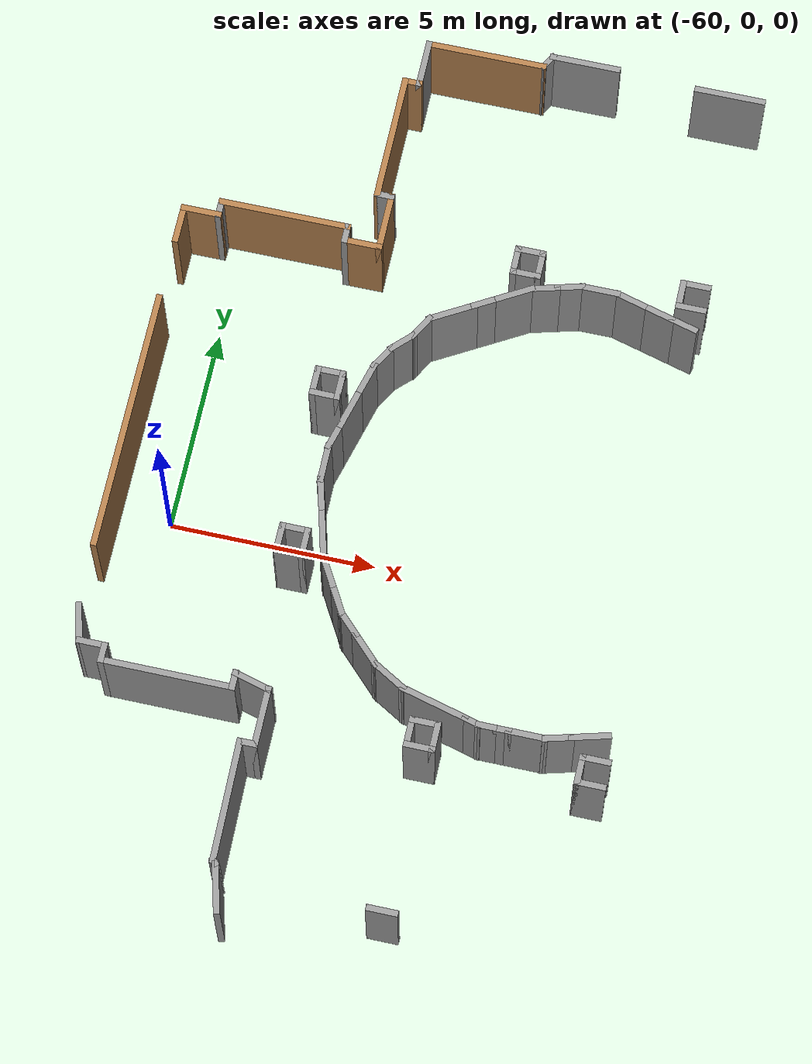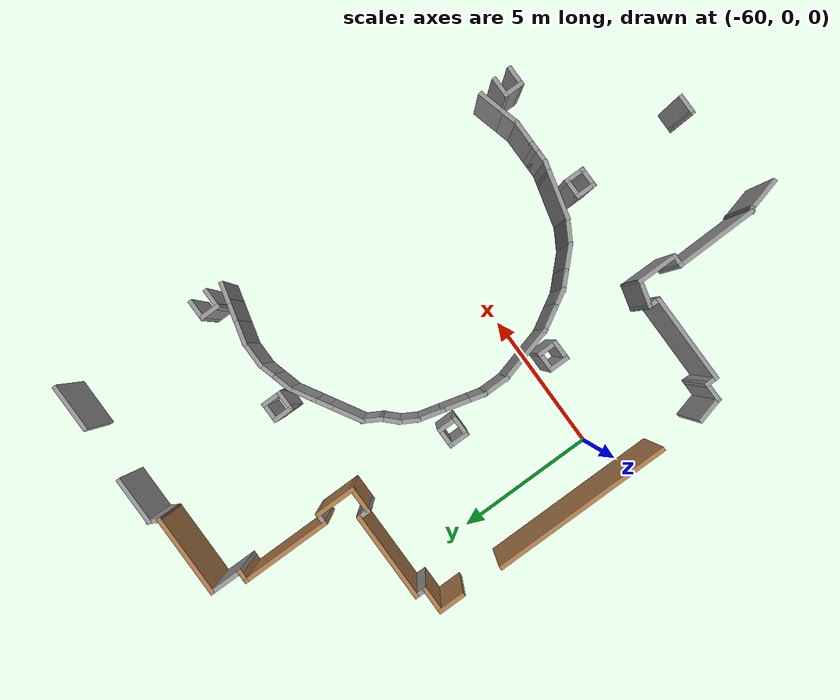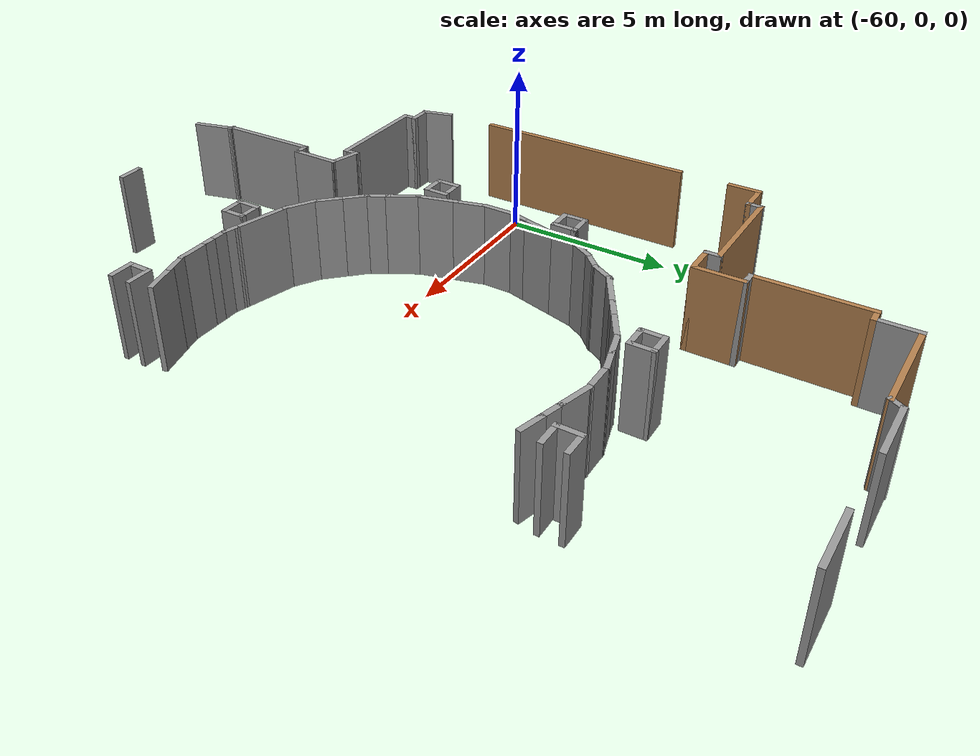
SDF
<sdf version="1.7">
 <model name="TD_1">
  <pose>-32.4963 -12.7971 0 0 -0 0</pose>
  <link name="Wall_257">
   <collision name="Wall_257_Collision">
    <geometry><box><size>3 0.15 2.5</size></box></geometry>
    <pose>0 0 1.25 0 -0 0</pose>
   </collision>
   <visual name="Wall_257_Visual">
    <pose>0 0 1.25 0 -0 0</pose>
    <geometry><box><size>3 0.15 2.5</size></box></geometry>
    <material>
     <script><uri>file://media/materials/scripts/gazebo.material</uri><name>Gazebo/Grey</name></script>
     <ambient>1 1 1 1</ambient>
    </material>
    <meta><layer>0</layer></meta>
   </visual>
   <pose>-24.3442 5.75653 0 0 -0 1.58946</pose>
  </link>
  <link name="Wall_258">
   <collision name="Wall_258_Collision">
    <geometry><box><size>0.5 0.15 2.5</size></box></geometry>
    <pose>0 0 1.25 0 -0 0</pose>
   </collision>
   <visual name="Wall_258_Visual">
    <pose>0 0 1.25 0 -0 0</pose>
    <geometry><box><size>0.5 0.15 2.5</size></box></geometry>
    <material>
     <script><uri>file://media/materials/scripts/gazebo.material</uri><name>Gazebo/Grey</name></script>
     <ambient>1 1 1 1</ambient>
    </material>
    <meta><layer>0</layer></meta>
   </visual>
   <pose>-24.1958 7.18153 0 0 -0 0</pose>
  </link>
  <link name="Wall_259">
   <collision name="Wall_259_Collision">
    <geometry><box><size>1.5 0.15 2.5</size></box></geometry>
    <pose>0 0 1.25 0 -0 0</pose>
   </collision>
   <visual name="Wall_259_Visual">
    <pose>0 0 1.25 0 -0 0</pose>
    <geometry><box><size>1.5 0.15 2.5</size></box></geometry>
    <material>
     <script><uri>file://media/materials/scripts/gazebo.material</uri><name>Gazebo/Grey</name></script>
     <ambient>1 1 1 1</ambient>
    </material>
    <meta><layer>0</layer></meta>
   </visual>
   <pose>-24.0208 7.85653 0 0 -0 1.5708</pose>
  </link>
  <link name="Wall_260">
   <collision name="Wall_260_Collision">
    <geometry><box><size>1 0.15 2.5</size></box></geometry>
    <pose>0 0 1.25 0 -0 0</pose>
   </collision>
   <visual name="Wall_260_Visual">
    <pose>0 0 1.25 0 -0 0</pose>
    <geometry><box><size>1 0.15 2.5</size></box></geometry>
    <material>
     <script><uri>file://media/materials/scripts/gazebo.material</uri><name>Gazebo/Grey</name></script>
     <ambient>1 1 1 1</ambient>
    </material>
    <meta><layer>0</layer></meta>
   </visual>
   <pose>-24.4313 8.64153 0 0 -0 2.87979</pose>
  </link>
  <link name="Wall_261">
   <collision name="Wall_261_Collision">
    <geometry><box><size>0.5 0.15 2.5</size></box></geometry>
    <pose>0 0 1.25 0 -0 0</pose>
   </collision>
   <visual name="Wall_261_Visual">
    <pose>0 0 1.25 0 -0 0</pose>
    <geometry><box><size>0.5 0.15 2.5</size></box></geometry>
    <material>
     <script><uri>file://media/materials/scripts/gazebo.material</uri><name>Gazebo/Grey</name></script>
     <ambient>1 1 1 1</ambient>
    </material>
    <meta><layer>0</layer></meta>
   </visual>
   <pose>-24.8418 8.57653 0 0 -0 -1.5708</pose>
  </link>
  <link name="Wall_262">
   <collision name="Wall_262_Collision">
    <geometry><box><size>3.25 0.15 2.5</size></box></geometry>
    <pose>0 0 1.25 0 -0 0</pose>
   </collision>
   <visual name="Wall_262_Visual">
    <pose>0 0 1.25 0 -0 0</pose>
    <geometry><box><size>3.25 0.15 2.5</size></box></geometry>
    <material>
     <script><uri>file://media/materials/scripts/gazebo.material</uri><name>Gazebo/Grey</name></script>
     <ambient>1 1 1 1</ambient>
    </material>
    <meta><layer>0</layer></meta>
   </visual>
   <pose>-26.3918 8.40153 0 0 -0 3.14159</pose>
  </link>
  <link name="Wall_263">
   <collision name="Wall_263_Collision">
    <geometry><box><size>0.5 0.15 2.5</size></box></geometry>
    <pose>0 0 1.25 0 -0 0</pose>
   </collision>
   <visual name="Wall_263_Visual">
    <pose>0 0 1.25 0 -0 0</pose>
    <geometry><box><size>0.5 0.15 2.5</size></box></geometry>
    <material>
     <script><uri>file://media/materials/scripts/gazebo.material</uri><name>Gazebo/Grey</name></script>
     <ambient>1 1 1 1</ambient>
    </material>
    <meta><layer>0</layer></meta>
   </visual>
   <pose>-27.9418 8.57653 0 0 -0 1.5708</pose>
  </link>
  <link name="Wall_264">
   <collision name="Wall_264_Collision">
    <geometry><box><size>0.75 0.15 2.5</size></box></geometry>
    <pose>0 0 1.25 0 -0 0</pose>
   </collision>
   <visual name="Wall_264_Visual">
    <pose>0 0 1.25 0 -0 0</pose>
    <geometry><box><size>0.75 0.15 2.5</size></box></geometry>
    <material>
     <script><uri>file://media/materials/scripts/gazebo.material</uri><name>Gazebo/Grey</name></script>
     <ambient>1 1 1 1</ambient>
    </material>
    <meta><layer>0</layer></meta>
   </visual>
   <pose>-28.2418 8.75153 0 0 -0 3.14159</pose>
  </link>
  <link name="Wall_265">
   <collision name="Wall_265_Collision">
    <geometry><box><size>1 0.15 2.5</size></box></geometry>
    <pose>0 0 1.25 0 -0 0</pose>
   </collision>
   <visual name="Wall_265_Visual">
    <pose>0 0 1.25 0 -0 0</pose>
    <geometry><box><size>1 0.15 2.5</size></box></geometry>
    <material>
     <script><uri>file://media/materials/scripts/gazebo.material</uri><name>Gazebo/Grey</name></script>
     <ambient>1 1 1 1</ambient>
    </material>
    <meta><layer>0</layer></meta>
   </visual>
   <pose>-28.6518 9.16205 0 0 -0 1.8326</pose>
  </link>
  <link name="Wall_267">
   <collision name="Wall_267_Collision">
    <geometry><box><size>6.5 0.15 2.5</size></box></geometry>
    <pose>0 0 1.25 0 -0 0</pose>
   </collision>
   <visual name="Wall_267_Visual">
    <pose>0 0 1.25 0 -0 0</pose>
    <geometry><box><size>6.5 0.15 2.5</size></box></geometry>
    <material>
     <script><uri>file://media/materials/scripts/gazebo.material</uri><name>Gazebo/Wood</name></script>
     <ambient>1 1 1 1</ambient>
    </material>
    <meta><layer>0</layer></meta>
   </visual>
   <pose>-28.7937 14.3199 0 0 -0 1.5708</pose>
  </link>
  <link name="Wall_269">
   <collision name="Wall_269_Collision">
    <geometry><box><size>1 0.15 2.5</size></box></geometry>
    <pose>0 0 1.25 0 -0 0</pose>
   </collision>
   <visual name="Wall_269_Visual">
    <pose>0 0 1.25 0 -0 0</pose>
    <geometry><box><size>1 0.15 2.5</size></box></geometry>
    <material>
     <script><uri>file://media/materials/scripts/gazebo.material</uri><name>Gazebo/Wood</name></script>
     <ambient>1 1 1 1</ambient>
    </material>
    <meta><layer>0</layer></meta>
   </visual>
   <pose>-28.7707 19.4819 0 0 -0 1.5708</pose>
  </link>
  <link name="Wall_270">
   <collision name="Wall_270_Collision">
    <geometry><box><size>1 0.15 2.5</size></box></geometry>
    <pose>0 0 1.25 0 -0 0</pose>
   </collision>
   <visual name="Wall_270_Visual">
    <pose>0 0 1.25 0 -0 0</pose>
    <geometry><box><size>1 0.15 2.5</size></box></geometry>
    <material>
     <script><uri>file://media/materials/scripts/gazebo.material</uri><name>Gazebo/Wood</name></script>
     <ambient>1 1 1 1</ambient>
    </material>
    <meta><layer>0</layer></meta>
   </visual>
   <pose>-28.3457 19.9069 0 0 -0 0</pose>
  </link>
  <link name="Wall_271">
   <collision name="Wall_271_Collision">
    <geometry><box><size>0.5 0.15 2.5</size></box></geometry>
    <pose>0 0 1.25 0 -0 0</pose>
   </collision>
   <visual name="Wall_271_Visual">
    <pose>0 0 1.25 0 -0 0</pose>
    <geometry><box><size>0.5 0.15 2.5</size></box></geometry>
    <material>
     <script><uri>file://media/materials/scripts/gazebo.material</uri><name>Gazebo/Grey</name></script>
     <ambient>1 1 1 1</ambient>
    </material>
    <meta><layer>0</layer></meta>
   </visual>
   <pose>-27.9207 20.0819 0 0 -0 1.5708</pose>
  </link>
  <link name="Wall_272">
   <collision name="Wall_272_Collision">
    <geometry><box><size>3.25 0.15 2.5</size></box></geometry>
    <pose>0 0 1.25 0 -0 0</pose>
   </collision>
   <visual name="Wall_272_Visual">
    <pose>0 0 1.25 0 -0 0</pose>
    <geometry><box><size>3.25 0.15 2.5</size></box></geometry>
    <material>
     <script><uri>file://media/materials/scripts/gazebo.material</uri><name>Gazebo/Wood</name></script>
     <ambient>1 1 1 1</ambient>
    </material>
    <meta><layer>0</layer></meta>
   </visual>
   <pose>-26.3707 20.2569 0 0 -0 0</pose>
  </link>
  <link name="Wall_273">
   <collision name="Wall_273_Collision">
    <geometry><box><size>0.5 0.15 2.5</size></box></geometry>
    <pose>0 0 1.25 0 -0 0</pose>
   </collision>
   <visual name="Wall_273_Visual">
    <pose>0 0 1.25 0 -0 0</pose>
    <geometry><box><size>0.5 0.15 2.5</size></box></geometry>
    <material>
     <script><uri>file://media/materials/scripts/gazebo.material</uri><name>Gazebo/Grey</name></script>
     <ambient>1 1 1 1</ambient>
    </material>
    <meta><layer>0</layer></meta>
   </visual>
   <pose>-24.8207 20.0819 0 0 -0 -1.5708</pose>
  </link>
  <link name="Wall_274">
   <collision name="Wall_274_Collision">
    <geometry><box><size>1 0.15 2.5</size></box></geometry>
    <pose>0 0 1.25 0 -0 0</pose>
   </collision>
   <visual name="Wall_274_Visual">
    <pose>0 0 1.25 0 -0 0</pose>
    <geometry><box><size>1 0.15 2.5</size></box></geometry>
    <material>
     <script><uri>file://media/materials/scripts/gazebo.material</uri><name>Gazebo/Wood</name></script>
     <ambient>1 1 1 1</ambient>
    </material>
    <meta><layer>0</layer></meta>
   </visual>
   <pose>-24.3957 19.9069 0 0 -0 0</pose>
  </link>
  <link name="Wall_275">
   <collision name="Wall_275_Collision">
    <geometry><box><size>1.5 0.15 2.5</size></box></geometry>
    <pose>0 0 1.25 0 -0 0</pose>
   </collision>
   <visual name="Wall_275_Visual">
    <pose>0 0 1.25 0 -0 0</pose>
    <geometry><box><size>1.5 0.15 2.5</size></box></geometry>
    <material>
     <script><uri>file://media/materials/scripts/gazebo.material</uri><name>Gazebo/Wood</name></script>
     <ambient>1 1 1 1</ambient>
    </material>
    <meta><layer>0</layer></meta>
   </visual>
   <pose>-23.9707 20.5819 0 0 -0 1.5708</pose>
  </link>
  <link name="Wall_276">
   <collision name="Wall_276_Collision">
    <geometry><box><size>0.5 0.15 2.5</size></box></geometry>
    <pose>0 0 1.25 0 -0 0</pose>
   </collision>
   <visual name="Wall_276_Visual">
    <pose>0 0 1.25 0 -0 0</pose>
    <geometry><box><size>0.5 0.15 2.5</size></box></geometry>
    <material>
     <script><uri>file://media/materials/scripts/gazebo.material</uri><name>Gazebo/Grey</name></script>
     <ambient>1 1 1 1</ambient>
    </material>
    <meta><layer>0</layer></meta>
   </visual>
   <pose>-24.1457 21.2569 0 0 -0 3.14159</pose>
  </link>
  <link name="Wall_278">
   <collision name="Wall_278_Collision">
    <geometry><box><size>3.25 0.15 2.5</size></box></geometry>
    <pose>0 0 1.25 0 -0 0</pose>
   </collision>
   <visual name="Wall_278_Visual">
    <pose>0 0 1.25 0 -0 0</pose>
    <geometry><box><size>3.25 0.15 2.5</size></box></geometry>
    <material>
     <script><uri>file://media/materials/scripts/gazebo.material</uri><name>Gazebo/Wood</name></script>
     <ambient>1 1 1 1</ambient>
    </material>
    <meta><layer>0</layer></meta>
   </visual>
   <pose>-24.3207 22.8069 0 0 -0 1.5708</pose>
  </link>
  <link name="Wall_279">
   <collision name="Wall_279_Collision">
    <geometry><box><size>0.5 0.15 2.5</size></box></geometry>
    <pose>0 0 1.25 0 -0 0</pose>
   </collision>
   <visual name="Wall_279_Visual">
    <pose>0 0 1.25 0 -0 0</pose>
    <geometry><box><size>0.5 0.15 2.5</size></box></geometry>
    <material>
     <script><uri>file://media/materials/scripts/gazebo.material</uri><name>Gazebo/Wood</name></script>
     <ambient>1 1 1 1</ambient>
    </material>
    <meta><layer>0</layer></meta>
   </visual>
   <pose>-24.1457 24.3569 0 0 -0 0</pose>
  </link>
  <link name="Wall_280">
   <collision name="Wall_280_Collision">
    <geometry><box><size>1.25 0.15 2.5</size></box></geometry>
    <pose>0 0 1.25 0 -0 0</pose>
   </collision>
   <visual name="Wall_280_Visual">
    <pose>0 0 1.25 0 -0 0</pose>
    <geometry><box><size>1.25 0.15 2.5</size></box></geometry>
    <material>
     <script><uri>file://media/materials/scripts/gazebo.material</uri><name>Gazebo/Grey</name></script>
     <ambient>1 1 1 1</ambient>
    </material>
    <meta><layer>0</layer></meta>
   </visual>
   <pose>-23.9707 24.9069 0 0 -0 1.5708</pose>
  </link>
  <link name="Wall_281">
   <collision name="Wall_281_Collision">
    <geometry><box><size>3 0.15 2.5</size></box></geometry>
    <pose>0 0 1.25 0 -0 0</pose>
   </collision>
   <visual name="Wall_281_Visual">
    <pose>0 0 1.25 0 -0 0</pose>
    <geometry><box><size>3 0.15 2.5</size></box></geometry>
    <material>
     <script><uri>file://media/materials/scripts/gazebo.material</uri><name>Gazebo/Wood</name></script>
     <ambient>1 1 1 1</ambient>
    </material>
    <meta><layer>0</layer></meta>
   </visual>
   <pose>-22.5457 25.4569 0 0 -0 0</pose>
  </link>
  <link name="Wall_282">
   <collision name="Wall_282_Collision">
    <geometry><box><size>0.5 0.15 2.5</size></box></geometry>
    <pose>0 0 1.25 0 -0 0</pose>
   </collision>
   <visual name="Wall_282_Visual">
    <pose>0 0 1.25 0 -0 0</pose>
    <geometry><box><size>0.5 0.15 2.5</size></box></geometry>
    <material>
     <script><uri>file://media/materials/scripts/gazebo.material</uri><name>Gazebo/Grey</name></script>
     <ambient>1 1 1 1</ambient>
    </material>
    <meta><layer>0</layer></meta>
   </visual>
   <pose>-21.0332 25.6085 0 0 -0 1.0472</pose>
  </link>
  <link name="Wall_283">
   <collision name="Wall_283_Collision">
    <geometry><box><size>1.75 0.15 2.5</size></box></geometry>
    <pose>0 0 1.25 0 -0 0</pose>
   </collision>
   <visual name="Wall_283_Visual">
    <pose>0 0 1.25 0 -0 0</pose>
    <geometry><box><size>1.75 0.15 2.5</size></box></geometry>
    <material>
     <script><uri>file://media/materials/scripts/gazebo.material</uri><name>Gazebo/Grey</name></script>
     <ambient>1 1 1 1</ambient>
    </material>
    <meta><layer>0</layer></meta>
   </visual>
   <pose>-20.1457 25.7601 0 0 -0 0</pose>
  </link>
  <link name="Wall_285">
   <collision name="Wall_285_Collision">
    <geometry><box><size>1.75 0.15 2.5</size></box></geometry>
    <pose>0 0 1.25 0 -0 0</pose>
   </collision>
   <visual name="Wall_285_Visual">
    <pose>0 0 1.25 0 -0 0</pose>
    <geometry><box><size>1.75 0.15 2.5</size></box></geometry>
    <material>
     <script><uri>file://media/materials/scripts/gazebo.material</uri><name>Gazebo/Grey</name></script>
     <ambient>1 1 1 1</ambient>
    </material>
    <meta><layer>0</layer></meta>
   </visual>
   <pose>-16.5397 25.6579 0 0 -0 0</pose>
  </link>
  <link name="Wall_345">
   <collision name="Wall_345_Collision">
    <geometry><box><size>0.5 0.15 2.5</size></box></geometry>
    <pose>0 0 1.25 0 -0 0</pose>
   </collision>
   <visual name="Wall_345_Visual">
    <pose>0 0 1.25 0 -0 0</pose>
    <geometry><box><size>0.5 0.15 2.5</size></box></geometry>
    <material>
     <script><uri>file://media/materials/scripts/gazebo.material</uri><name>Gazebo/Grey</name></script>
     <ambient>1 1 1 1</ambient>
    </material>
    <meta><layer>0</layer></meta>
   </visual>
   <pose>-19.3112 8.78072 0 0 -0 -0.261799</pose>
  </link>
  <link name="Wall_346">
   <collision name="Wall_346_Collision">
    <geometry><box><size>0.5 0.15 2.5</size></box></geometry>
    <pose>0 0 1.25 0 -0 0</pose>
   </collision>
   <visual name="Wall_346_Visual">
    <pose>0 0 1.25 0 -0 0</pose>
    <geometry><box><size>0.5 0.15 2.5</size></box></geometry>
    <material>
     <script><uri>file://media/materials/scripts/gazebo.material</uri><name>Gazebo/Grey</name></script>
     <ambient>1 1 1 1</ambient>
    </material>
    <meta><layer>0</layer></meta>
   </visual>
   <pose>-18.9672 8.73543 0 0 -0 0</pose>
  </link>
  <link name="Wall_347">
   <collision name="Wall_347_Collision">
    <geometry><box><size>0.5 0.15 2.5</size></box></geometry>
    <pose>0 0 1.25 0 -0 0</pose>
   </collision>
   <visual name="Wall_347_Visual">
    <pose>0 0 1.25 0 -0 0</pose>
    <geometry><box><size>0.5 0.15 2.5</size></box></geometry>
    <material>
     <script><uri>file://media/materials/scripts/gazebo.material</uri><name>Gazebo/Grey</name></script>
     <ambient>1 1 1 1</ambient>
    </material>
    <meta><layer>0</layer></meta>
   </visual>
   <pose>-18.6172 8.73543 0 0 -0 0</pose>
  </link>
  <link name="Wall_348">
   <collision name="Wall_348_Collision">
    <geometry><box><size>1 0.15 2.5</size></box></geometry>
    <pose>0 0 1.25 0 -0 0</pose>
   </collision>
   <visual name="Wall_348_Visual">
    <pose>0 0 1.25 0 -0 0</pose>
    <geometry><box><size>1 0.15 2.5</size></box></geometry>
    <material>
     <script><uri>file://media/materials/scripts/gazebo.material</uri><name>Gazebo/Grey</name></script>
     <ambient>1 1 1 1</ambient>
    </material>
    <meta><layer>0</layer></meta>
   </visual>
   <pose>-18.0172 8.73543 0 0 -0 0</pose>
  </link>
  <link name="Wall_349">
   <collision name="Wall_349_Collision">
    <geometry><box><size>0.75 0.15 2.5</size></box></geometry>
    <pose>0 0 1.25 0 -0 0</pose>
   </collision>
   <visual name="Wall_349_Visual">
    <pose>0 0 1.25 0 -0 0</pose>
    <geometry><box><size>0.75 0.15 2.5</size></box></geometry>
    <material>
     <script><uri>file://media/materials/scripts/gazebo.material</uri><name>Gazebo/Grey</name></script>
     <ambient>1 1 1 1</ambient>
    </material>
    <meta><layer>0</layer></meta>
   </visual>
   <pose>-17.3024 8.81307 0 0 -0 0.261799</pose>
  </link>
  <link name="Wall_350">
   <collision name="Wall_350_Collision">
    <geometry><box><size>1 0.15 2.5</size></box></geometry>
    <pose>0 0 1.25 0 -0 0</pose>
   </collision>
   <visual name="Wall_350_Visual">
    <pose>0 0 1.25 0 -0 0</pose>
    <geometry><box><size>1 0.15 2.5</size></box></geometry>
    <material>
     <script><uri>file://media/materials/scripts/gazebo.material</uri><name>Gazebo/Grey</name></script>
     <ambient>1 1 1 1</ambient>
    </material>
    <meta><layer>0</layer></meta>
   </visual>
   <pose>-16.6021 9.00072 0 0 -0 0.261799</pose>
  </link>
  <link name="Wall_378">
   <collision name="Wall_378_Collision">
    <geometry><box><size>0.75 0.15 2.5</size></box></geometry>
    <pose>0 0 1.25 0 -0 0</pose>
   </collision>
   <visual name="Wall_378_Visual">
    <pose>0 0 1.25 0 -0 0</pose>
    <geometry><box><size>0.75 0.15 2.5</size></box></geometry>
    <material>
     <script><uri>file://media/materials/scripts/gazebo.material</uri><name>Gazebo/Grey</name></script>
     <ambient>1 1 1 1</ambient>
    </material>
    <meta><layer>0</layer></meta>
   </visual>
   <pose>-16.4813 19.4797 0 0 -0 2.87979</pose>
  </link>
  <link name="Wall_379">
   <collision name="Wall_379_Collision">
    <geometry><box><size>0.75 0.15 2.5</size></box></geometry>
    <pose>0 0 1.25 0 -0 0</pose>
   </collision>
   <visual name="Wall_379_Visual">
    <pose>0 0 1.25 0 -0 0</pose>
    <geometry><box><size>0.75 0.15 2.5</size></box></geometry>
    <material>
     <script><uri>file://media/materials/scripts/gazebo.material</uri><name>Gazebo/Grey</name></script>
     <ambient>1 1 1 1</ambient>
    </material>
    <meta><layer>0</layer></meta>
   </visual>
   <pose>-17.0609 19.635 0 0 -0 2.87979</pose>
  </link>
  <link name="Wall_380">
   <collision name="Wall_380_Collision">
    <geometry><box><size>1 0.15 2.5</size></box></geometry>
    <pose>0 0 1.25 0 -0 0</pose>
   </collision>
   <visual name="Wall_380_Visual">
    <pose>0 0 1.25 0 -0 0</pose>
    <geometry><box><size>1 0.15 2.5</size></box></geometry>
    <material>
     <script><uri>file://media/materials/scripts/gazebo.material</uri><name>Gazebo/Grey</name></script>
     <ambient>1 1 1 1</ambient>
    </material>
    <meta><layer>0</layer></meta>
   </visual>
   <pose>-17.7612 19.8227 0 0 -0 2.87979</pose>
  </link>
  <link name="Wall_381">
   <collision name="Wall_381_Collision">
    <geometry><box><size>1 0.15 2.5</size></box></geometry>
    <pose>0 0 1.25 0 -0 0</pose>
   </collision>
   <visual name="Wall_381_Visual">
    <pose>0 0 1.25 0 -0 0</pose>
    <geometry><box><size>1 0.15 2.5</size></box></geometry>
    <material>
     <script><uri>file://media/materials/scripts/gazebo.material</uri><name>Gazebo/Grey</name></script>
     <ambient>1 1 1 1</ambient>
    </material>
    <meta><layer>0</layer></meta>
   </visual>
   <pose>-18.5967 19.9327 0 0 -0 3.14159</pose>
  </link>
  <link name="Wall_382">
   <collision name="Wall_382_Collision">
    <geometry><box><size>0.75 0.15 2.5</size></box></geometry>
    <pose>0 0 1.25 0 -0 0</pose>
   </collision>
   <visual name="Wall_382_Visual">
    <pose>0 0 1.25 0 -0 0</pose>
    <geometry><box><size>0.75 0.15 2.5</size></box></geometry>
    <material>
     <script><uri>file://media/materials/scripts/gazebo.material</uri><name>Gazebo/Grey</name></script>
     <ambient>1 1 1 1</ambient>
    </material>
    <meta><layer>0</layer></meta>
   </visual>
   <pose>-19.3115 19.855 0 0 -0 -2.87979</pose>
  </link>
  <link name="Wall_383">
   <collision name="Wall_383_Collision">
    <geometry><box><size>0.75 0.15 2.5</size></box></geometry>
    <pose>0 0 1.25 0 -0 0</pose>
   </collision>
   <visual name="Wall_383_Visual">
    <pose>0 0 1.25 0 -0 0</pose>
    <geometry><box><size>0.75 0.15 2.5</size></box></geometry>
    <material>
     <script><uri>file://media/materials/scripts/gazebo.material</uri><name>Gazebo/Grey</name></script>
     <ambient>1 1 1 1</ambient>
    </material>
    <meta><layer>0</layer></meta>
   </visual>
   <pose>-19.891 19.6997 0 0 -0 -2.87979</pose>
  </link>
  <link name="Wall_384">
   <collision name="Wall_384_Collision">
    <geometry><box><size>1 0.15 2.5</size></box></geometry>
    <pose>0 0 1.25 0 -0 0</pose>
   </collision>
   <visual name="Wall_384_Visual">
    <pose>0 0 1.25 0 -0 0</pose>
    <geometry><box><size>1 0.15 2.5</size></box></geometry>
    <material>
     <script><uri>file://media/materials/scripts/gazebo.material</uri><name>Gazebo/Grey</name></script>
     <ambient>1 1 1 1</ambient>
    </material>
    <meta><layer>0</layer></meta>
   </visual>
   <pose>-20.5489 19.4096 0 0 -0 -2.61799</pose>
  </link>
  <link name="Wall_385">
   <collision name="Wall_385_Collision">
    <geometry><box><size>0.75 0.15 2.5</size></box></geometry>
    <pose>0 0 1.25 0 -0 0</pose>
   </collision>
   <visual name="Wall_385_Visual">
    <pose>0 0 1.25 0 -0 0</pose>
    <geometry><box><size>0.75 0.15 2.5</size></box></geometry>
    <material>
     <script><uri>file://media/materials/scripts/gazebo.material</uri><name>Gazebo/Grey</name></script>
     <ambient>1 1 1 1</ambient>
    </material>
    <meta><layer>0</layer></meta>
   </visual>
   <pose>-21.1768 19.0471 0 0 -0 -2.61799</pose>
  </link>
  <link name="Wall_386">
   <collision name="Wall_386_Collision">
    <geometry><box><size>1.25 0.15 2.5</size></box></geometry>
    <pose>0 0 1.25 0 -0 0</pose>
   </collision>
   <visual name="Wall_386_Visual">
    <pose>0 0 1.25 0 -0 0</pose>
    <geometry><box><size>1.25 0.15 2.5</size></box></geometry>
    <material>
     <script><uri>file://media/materials/scripts/gazebo.material</uri><name>Gazebo/Grey</name></script>
     <ambient>1 1 1 1</ambient>
    </material>
    <meta><layer>0</layer></meta>
   </visual>
   <pose>-21.9129 18.6221 0 0 -0 -2.61799</pose>
  </link>
  <link name="Wall_387">
   <collision name="Wall_387_Collision">
    <geometry><box><size>0.75 0.15 2.5</size></box></geometry>
    <pose>0 0 1.25 0 -0 0</pose>
   </collision>
   <visual name="Wall_387_Visual">
    <pose>0 0 1.25 0 -0 0</pose>
    <geometry><box><size>0.75 0.15 2.5</size></box></geometry>
    <material>
     <script><uri>file://media/materials/scripts/gazebo.material</uri><name>Gazebo/Grey</name></script>
     <ambient>1 1 1 1</ambient>
    </material>
    <meta><layer>0</layer></meta>
   </visual>
   <pose>-22.5392 18.0873 0 0 -0 -2.0944</pose>
  </link>
  <link name="Wall_388">
   <collision name="Wall_388_Collision">
    <geometry><box><size>0.75 0.15 2.5</size></box></geometry>
    <pose>0 0 1.25 0 -0 0</pose>
   </collision>
   <visual name="Wall_388_Visual">
    <pose>0 0 1.25 0 -0 0</pose>
    <geometry><box><size>0.75 0.15 2.5</size></box></geometry>
    <material>
     <script><uri>file://media/materials/scripts/gazebo.material</uri><name>Gazebo/Grey</name></script>
     <ambient>1 1 1 1</ambient>
    </material>
    <meta><layer>0</layer></meta>
   </visual>
   <pose>-22.9013 17.6153 0 0 -0 -2.35619</pose>
  </link>
  <link name="Wall_389">
   <collision name="Wall_389_Collision">
    <geometry><box><size>0.75 0.15 2.5</size></box></geometry>
    <pose>0 0 1.25 0 -0 0</pose>
   </collision>
   <visual name="Wall_389_Visual">
    <pose>0 0 1.25 0 -0 0</pose>
    <geometry><box><size>0.75 0.15 2.5</size></box></geometry>
    <material>
     <script><uri>file://media/materials/scripts/gazebo.material</uri><name>Gazebo/Grey</name></script>
     <ambient>1 1 1 1</ambient>
    </material>
    <meta><layer>0</layer></meta>
   </visual>
   <pose>-23.2635 17.1434 0 0 -0 -2.0944</pose>
  </link>
  <link name="Wall_390">
   <collision name="Wall_390_Collision">
    <geometry><box><size>1 0.15 2.5</size></box></geometry>
    <pose>0 0 1.25 0 -0 0</pose>
   </collision>
   <visual name="Wall_390_Visual">
    <pose>0 0 1.25 0 -0 0</pose>
    <geometry><box><size>1 0.15 2.5</size></box></geometry>
    <material>
     <script><uri>file://media/materials/scripts/gazebo.material</uri><name>Gazebo/Grey</name></script>
     <ambient>1 1 1 1</ambient>
    </material>
    <meta><layer>0</layer></meta>
   </visual>
   <pose>-23.5235 16.4731 0 0 -0 -1.8326</pose>
  </link>
  <link name="Wall_391">
   <collision name="Wall_391_Collision">
    <geometry><box><size>1 0.15 2.5</size></box></geometry>
    <pose>0 0 1.25 0 -0 0</pose>
   </collision>
   <visual name="Wall_391_Visual">
    <pose>0 0 1.25 0 -0 0</pose>
    <geometry><box><size>1 0.15 2.5</size></box></geometry>
    <material>
     <script><uri>file://media/materials/scripts/gazebo.material</uri><name>Gazebo/Grey</name></script>
     <ambient>1 1 1 1</ambient>
    </material>
    <meta><layer>0</layer></meta>
   </visual>
   <pose>-23.7434 15.652 0 0 -0 -1.8326</pose>
  </link>
  <link name="Wall_392">
   <collision name="Wall_392_Collision">
    <geometry><box><size>0.75 0.15 2.5</size></box></geometry>
    <pose>0 0 1.25 0 -0 0</pose>
   </collision>
   <visual name="Wall_392_Visual">
    <pose>0 0 1.25 0 -0 0</pose>
    <geometry><box><size>0.75 0.15 2.5</size></box></geometry>
    <material>
     <script><uri>file://media/materials/scripts/gazebo.material</uri><name>Gazebo/Grey</name></script>
     <ambient>1 1 1 1</ambient>
    </material>
    <meta><layer>0</layer></meta>
   </visual>
   <pose>-23.9311 14.9517 0 0 -0 -1.8326</pose>
  </link>
  <link name="Wall_393">
   <collision name="Wall_393_Collision">
    <geometry><box><size>1 0.15 2.5</size></box></geometry>
    <pose>0 0 1.25 0 -0 0</pose>
   </collision>
   <visual name="Wall_393_Visual">
    <pose>0 0 1.25 0 -0 0</pose>
    <geometry><box><size>1 0.15 2.5</size></box></geometry>
    <material>
     <script><uri>file://media/materials/scripts/gazebo.material</uri><name>Gazebo/Grey</name></script>
     <ambient>1 1 1 1</ambient>
    </material>
    <meta><layer>0</layer></meta>
   </visual>
   <pose>-24.0087 14.237 0 0 -0 -1.5708</pose>
  </link>
  <link name="Wall_394">
   <collision name="Wall_394_Collision">
    <geometry><box><size>1 0.15 2.5</size></box></geometry>
    <pose>0 0 1.25 0 -0 0</pose>
   </collision>
   <visual name="Wall_394_Visual">
    <pose>0 0 1.25 0 -0 0</pose>
    <geometry><box><size>1 0.15 2.5</size></box></geometry>
    <material>
     <script><uri>file://media/materials/scripts/gazebo.material</uri><name>Gazebo/Grey</name></script>
     <ambient>1 1 1 1</ambient>
    </material>
    <meta><layer>0</layer></meta>
   </visual>
   <pose>-23.8987 13.4014 0 0 -0 -1.309</pose>
  </link>
  <link name="Wall_395">
   <collision name="Wall_395_Collision">
    <geometry><box><size>1.25 0.15 2.5</size></box></geometry>
    <pose>0 0 1.25 0 -0 0</pose>
   </collision>
   <visual name="Wall_395_Visual">
    <pose>0 0 1.25 0 -0 0</pose>
    <geometry><box><size>1.25 0.15 2.5</size></box></geometry>
    <material>
     <script><uri>file://media/materials/scripts/gazebo.material</uri><name>Gazebo/Grey</name></script>
     <ambient>1 1 1 1</ambient>
    </material>
    <meta><layer>0</layer></meta>
   </visual>
   <pose>-23.6464 12.4597 0 0 -0 -1.309</pose>
  </link>
  <link name="Wall_396">
   <collision name="Wall_396_Collision">
    <geometry><box><size>1 0.15 2.5</size></box></geometry>
    <pose>0 0 1.25 0 -0 0</pose>
   </collision>
   <visual name="Wall_396_Visual">
    <pose>0 0 1.25 0 -0 0</pose>
    <geometry><box><size>1 0.15 2.5</size></box></geometry>
    <material>
     <script><uri>file://media/materials/scripts/gazebo.material</uri><name>Gazebo/Grey</name></script>
     <ambient>1 1 1 1</ambient>
    </material>
    <meta><layer>0</layer></meta>
   </visual>
   <pose>-23.2915 11.5604 0 0 -0 -1.0472</pose>
  </link>
  <link name="Wall_397">
   <collision name="Wall_397_Collision">
    <geometry><box><size>0.75 0.15 2.5</size></box></geometry>
    <pose>0 0 1.25 0 -0 0</pose>
   </collision>
   <visual name="Wall_397_Visual">
    <pose>0 0 1.25 0 -0 0</pose>
    <geometry><box><size>0.75 0.15 2.5</size></box></geometry>
    <material>
     <script><uri>file://media/materials/scripts/gazebo.material</uri><name>Gazebo/Grey</name></script>
     <ambient>1 1 1 1</ambient>
    </material>
    <meta><layer>0</layer></meta>
   </visual>
   <pose>-22.929 10.9325 0 0 -0 -1.0472</pose>
  </link>
  <link name="Wall_398">
   <collision name="Wall_398_Collision">
    <geometry><box><size>0.75 0.15 2.5</size></box></geometry>
    <pose>0 0 1.25 0 -0 0</pose>
   </collision>
   <visual name="Wall_398_Visual">
    <pose>0 0 1.25 0 -0 0</pose>
    <geometry><box><size>0.75 0.15 2.5</size></box></geometry>
    <material>
     <script><uri>file://media/materials/scripts/gazebo.material</uri><name>Gazebo/Grey</name></script>
     <ambient>1 1 1 1</ambient>
    </material>
    <meta><layer>0</layer></meta>
   </visual>
   <pose>-22.5669 10.4605 0 0 -0 -0.785398</pose>
  </link>
  <link name="Wall_399">
   <collision name="Wall_399_Collision">
    <geometry><box><size>1 0.15 2.5</size></box></geometry>
    <pose>0 0 1.25 0 -0 0</pose>
   </collision>
   <visual name="Wall_399_Visual">
    <pose>0 0 1.25 0 -0 0</pose>
    <geometry><box><size>1 0.15 2.5</size></box></geometry>
    <material>
     <script><uri>file://media/materials/scripts/gazebo.material</uri><name>Gazebo/Grey</name></script>
     <ambient>1 1 1 1</ambient>
    </material>
    <meta><layer>0</layer></meta>
   </visual>
   <pose>-22.0543 9.94789 0 0 -0 -0.785398</pose>
  </link>
  <link name="Wall_400">
   <collision name="Wall_400_Collision">
    <geometry><box><size>1 0.15 2.5</size></box></geometry>
    <pose>0 0 1.25 0 -0 0</pose>
   </collision>
   <visual name="Wall_400_Visual">
    <pose>0 0 1.25 0 -0 0</pose>
    <geometry><box><size>1 0.15 2.5</size></box></geometry>
    <material>
     <script><uri>file://media/materials/scripts/gazebo.material</uri><name>Gazebo/Grey</name></script>
     <ambient>1 1 1 1</ambient>
    </material>
    <meta><layer>0</layer></meta>
   </visual>
   <pose>-21.3857 9.43487 0 0 -0 -0.523599</pose>
  </link>
  <link name="Wall_401">
   <collision name="Wall_401_Collision">
    <geometry><box><size>1.73765 0.15 2.5</size></box></geometry>
    <pose>0 0 1.25 0 -0 0</pose>
   </collision>
   <visual name="Wall_401_Visual">
    <pose>0 0 1.25 0 -0 0</pose>
    <geometry><box><size>1.73765 0.15 2.5</size></box></geometry>
    <material>
     <script><uri>file://media/materials/scripts/gazebo.material</uri><name>Gazebo/Grey</name></script>
     <ambient>1 1 1 1</ambient>
    </material>
    <meta><layer>0</layer></meta>
   </visual>
   <pose>-20.2489 9.02419 0 0 -0 -0.252317</pose>
  </link>
  <link name="Wall_406">
   <collision name="Wall_406_Collision">
    <geometry><box><size>0.75 0.15 2.5</size></box></geometry>
    <pose>0 0 1.25 0 -0 0</pose>
   </collision>
   <visual name="Wall_406_Visual">
    <pose>0 0 1.25 0 -0 0</pose>
    <geometry><box><size>0.75 0.15 2.5</size></box></geometry>
    <material>
     <script><uri>file://media/materials/scripts/gazebo.material</uri><name>Gazebo/Grey</name></script>
     <ambient>1 1 1 1</ambient>
    </material>
    <meta><layer>0</layer></meta>
   </visual>
   <pose>-20.3379 4.00346 0 0 -0 3.14159</pose>
  </link>
  <link name="Wall_407">
   <collision name="Wall_407_Collision">
    <geometry><box><size>0.16 0.15 2.5</size></box></geometry>
    <pose>0 0 1.25 0 -0 0</pose>
   </collision>
   <visual name="Wall_407_Visual">
    <pose>0 0 1.25 0 -0 0</pose>
    <geometry><box><size>0.16 0.15 2.5</size></box></geometry>
    <material>
     <script><uri>file://media/materials/scripts/gazebo.material</uri><name>Gazebo/Grey</name></script>
     <ambient>0 0 0 1</ambient>
    </material>
    <meta><layer>0</layer></meta>
   </visual>
   <pose>-20.6329 4.00346 0 0 -0 0</pose>
  </link>
  <link name="Wall_413">
   <collision name="Wall_413_Collision">
    <geometry><box><size>0.75 0.15 2.5</size></box></geometry>
    <pose>0 0 1.25 0 -0 0</pose>
   </collision>
   <visual name="Wall_413_Visual">
    <pose>0 0 1.25 0 -0 0</pose>
    <geometry><box><size>0.75 0.15 2.5</size></box></geometry>
    <material>
     <script><uri>file://media/materials/scripts/gazebo.material</uri><name>Gazebo/Grey</name></script>
     <ambient>1 1 1 1</ambient>
    </material>
    <meta><layer>0</layer></meta>
   </visual>
   <pose>-20.6482 8.23034 0 0 -0 -1.5708</pose>
  </link>
  <link name="Wall_414">
   <collision name="Wall_414_Collision">
    <geometry><box><size>0.75 0.15 2.5</size></box></geometry>
    <pose>0 0 1.25 0 -0 0</pose>
   </collision>
   <visual name="Wall_414_Visual">
    <pose>0 0 1.25 0 -0 0</pose>
    <geometry><box><size>0.75 0.15 2.5</size></box></geometry>
    <material>
     <script><uri>file://media/materials/scripts/gazebo.material</uri><name>Gazebo/Grey</name></script>
     <ambient>1 1 1 1</ambient>
    </material>
    <meta><layer>0</layer></meta>
   </visual>
   <pose>-20.3482 7.93034 0 0 -0 0</pose>
  </link>
  <link name="Wall_415">
   <collision name="Wall_415_Collision">
    <geometry><box><size>0.75 0.15 2.5</size></box></geometry>
    <pose>0 0 1.25 0 -0 0</pose>
   </collision>
   <visual name="Wall_415_Visual">
    <pose>0 0 1.25 0 -0 0</pose>
    <geometry><box><size>0.75 0.15 2.5</size></box></geometry>
    <material>
     <script><uri>file://media/materials/scripts/gazebo.material</uri><name>Gazebo/Grey</name></script>
     <ambient>1 1 1 1</ambient>
    </material>
    <meta><layer>0</layer></meta>
   </visual>
   <pose>-20.0482 8.23034 0 0 -0 1.5708</pose>
  </link>
  <link name="Wall_416">
   <collision name="Wall_416_Collision">
    <geometry><box><size>0.75 0.15 2.5</size></box></geometry>
    <pose>0 0 1.25 0 -0 0</pose>
   </collision>
   <visual name="Wall_416_Visual">
    <pose>0 0 1.25 0 -0 0</pose>
    <geometry><box><size>0.75 0.15 2.5</size></box></geometry>
    <material>
     <script><uri>file://media/materials/scripts/gazebo.material</uri><name>Gazebo/Grey</name></script>
     <ambient>1 1 1 1</ambient>
    </material>
    <meta><layer>0</layer></meta>
   </visual>
   <pose>-20.3482 8.53034 0 0 -0 3.14159</pose>
  </link>
  <link name="Wall_418">
   <collision name="Wall_418_Collision">
    <geometry><box><size>0.75 0.15 2.5</size></box></geometry>
    <pose>0 0 1.25 0 -0 0</pose>
   </collision>
   <visual name="Wall_418_Visual">
    <pose>0 0 1.25 0 -0 0</pose>
    <geometry><box><size>0.75 0.15 2.5</size></box></geometry>
    <material>
     <script><uri>file://media/materials/scripts/gazebo.material</uri><name>Gazebo/Grey</name></script>
     <ambient>1 1 1 1</ambient>
    </material>
    <meta><layer>0</layer></meta>
   </visual>
   <pose>-16.6707 8.1871 0 0 -0 -1.5708</pose>
  </link>
  <link name="Wall_419">
   <collision name="Wall_419_Collision">
    <geometry><box><size>0.75 0.15 2.5</size></box></geometry>
    <pose>0 0 1.25 0 -0 0</pose>
   </collision>
   <visual name="Wall_419_Visual">
    <pose>0 0 1.25 0 -0 0</pose>
    <geometry><box><size>0.75 0.15 2.5</size></box></geometry>
    <material>
     <script><uri>file://media/materials/scripts/gazebo.material</uri><name>Gazebo/Grey</name></script>
     <ambient>1 1 1 1</ambient>
    </material>
    <meta><layer>0</layer></meta>
   </visual>
   <pose>-16.3707 7.8871 0 0 -0 0</pose>
  </link>
  <link name="Wall_421">
   <collision name="Wall_421_Collision">
    <geometry><box><size>0.75 0.15 2.5</size></box></geometry>
    <pose>0 0 1.25 0 -0 0</pose>
   </collision>
   <visual name="Wall_421_Visual">
    <pose>0 0 1.25 0 -0 0</pose>
    <geometry><box><size>0.75 0.15 2.5</size></box></geometry>
    <material>
     <script><uri>file://media/materials/scripts/gazebo.material</uri><name>Gazebo/Grey</name></script>
     <ambient>1 1 1 1</ambient>
    </material>
    <meta><layer>0</layer></meta>
   </visual>
   <pose>-16.3707 8.4871 0 0 -0 3.14159</pose>
  </link>
  <link name="Wall_423">
   <collision name="Wall_423_Collision">
    <geometry><box><size>0.75 0.15 2.5</size></box></geometry>
    <pose>0 0 1.25 0 -0 0</pose>
   </collision>
   <visual name="Wall_423_Visual">
    <pose>0 0 1.25 0 -0 0</pose>
    <geometry><box><size>0.75 0.15 2.5</size></box></geometry>
    <material>
     <script><uri>file://media/materials/scripts/gazebo.material</uri><name>Gazebo/Grey</name></script>
     <ambient>1 1 1 1</ambient>
    </material>
    <meta><layer>0</layer></meta>
   </visual>
   <pose>-24.6133 12.1931 0 0 -0 -1.5708</pose>
  </link>
  <link name="Wall_424">
   <collision name="Wall_424_Collision">
    <geometry><box><size>0.75 0.15 2.5</size></box></geometry>
    <pose>0 0 1.25 0 -0 0</pose>
   </collision>
   <visual name="Wall_424_Visual">
    <pose>0 0 1.25 0 -0 0</pose>
    <geometry><box><size>0.75 0.15 2.5</size></box></geometry>
    <material>
     <script><uri>file://media/materials/scripts/gazebo.material</uri><name>Gazebo/Grey</name></script>
     <ambient>1 1 1 1</ambient>
    </material>
    <meta><layer>0</layer></meta>
   </visual>
   <pose>-24.3133 11.8931 0 0 -0 0</pose>
  </link>
  <link name="Wall_425">
   <collision name="Wall_425_Collision">
    <geometry><box><size>0.75 0.15 2.5</size></box></geometry>
    <pose>0 0 1.25 0 -0 0</pose>
   </collision>
   <visual name="Wall_425_Visual">
    <pose>0 0 1.25 0 -0 0</pose>
    <geometry><box><size>0.75 0.15 2.5</size></box></geometry>
    <material>
     <script><uri>file://media/materials/scripts/gazebo.material</uri><name>Gazebo/Grey</name></script>
     <ambient>1 1 1 1</ambient>
    </material>
    <meta><layer>0</layer></meta>
   </visual>
   <pose>-24.0133 12.1931 0 0 -0 1.5708</pose>
  </link>
  <link name="Wall_426">
   <collision name="Wall_426_Collision">
    <geometry><box><size>0.75 0.15 2.5</size></box></geometry>
    <pose>0 0 1.25 0 -0 0</pose>
   </collision>
   <visual name="Wall_426_Visual">
    <pose>0 0 1.25 0 -0 0</pose>
    <geometry><box><size>0.75 0.15 2.5</size></box></geometry>
    <material>
     <script><uri>file://media/materials/scripts/gazebo.material</uri><name>Gazebo/Grey</name></script>
     <ambient>1 1 1 1</ambient>
    </material>
    <meta><layer>0</layer></meta>
   </visual>
   <pose>-24.3133 12.4931 0 0 -0 3.14159</pose>
  </link>
  <link name="Wall_428">
   <collision name="Wall_428_Collision">
    <geometry><box><size>0.75 0.15 2.5</size></box></geometry>
    <pose>0 0 1.25 0 -0 0</pose>
   </collision>
   <visual name="Wall_428_Visual">
    <pose>0 0 1.25 0 -0 0</pose>
    <geometry><box><size>0.75 0.15 2.5</size></box></geometry>
    <material>
     <script><uri>file://media/materials/scripts/gazebo.material</uri><name>Gazebo/Grey</name></script>
     <ambient>1 1 1 1</ambient>
    </material>
    <meta><layer>0</layer></meta>
   </visual>
   <pose>-24.6889 16.2158 0 0 -0 -1.5708</pose>
  </link>
  <link name="Wall_429">
   <collision name="Wall_429_Collision">
    <geometry><box><size>0.75 0.15 2.5</size></box></geometry>
    <pose>0 0 1.25 0 -0 0</pose>
   </collision>
   <visual name="Wall_429_Visual">
    <pose>0 0 1.25 0 -0 0</pose>
    <geometry><box><size>0.75 0.15 2.5</size></box></geometry>
    <material>
     <script><uri>file://media/materials/scripts/gazebo.material</uri><name>Gazebo/Grey</name></script>
     <ambient>1 1 1 1</ambient>
    </material>
    <meta><layer>0</layer></meta>
   </visual>
   <pose>-24.3889 15.9158 0 0 -0 0</pose>
  </link>
  <link name="Wall_430">
   <collision name="Wall_430_Collision">
    <geometry><box><size>0.75 0.15 2.5</size></box></geometry>
    <pose>0 0 1.25 0 -0 0</pose>
   </collision>
   <visual name="Wall_430_Visual">
    <pose>0 0 1.25 0 -0 0</pose>
    <geometry><box><size>0.75 0.15 2.5</size></box></geometry>
    <material>
     <script><uri>file://media/materials/scripts/gazebo.material</uri><name>Gazebo/Grey</name></script>
     <ambient>1 1 1 1</ambient>
    </material>
    <meta><layer>0</layer></meta>
   </visual>
   <pose>-24.0889 16.2158 0 0 -0 1.5708</pose>
  </link>
  <link name="Wall_431">
   <collision name="Wall_431_Collision">
    <geometry><box><size>0.75 0.15 2.5</size></box></geometry>
    <pose>0 0 1.25 0 -0 0</pose>
   </collision>
   <visual name="Wall_431_Visual">
    <pose>0 0 1.25 0 -0 0</pose>
    <geometry><box><size>0.75 0.15 2.5</size></box></geometry>
    <material>
     <script><uri>file://media/materials/scripts/gazebo.material</uri><name>Gazebo/Grey</name></script>
     <ambient>1 1 1 1</ambient>
    </material>
    <meta><layer>0</layer></meta>
   </visual>
   <pose>-24.3889 16.5158 0 0 -0 3.14159</pose>
  </link>
  <link name="Wall_433">
   <collision name="Wall_433_Collision">
    <geometry><box><size>0.75 0.15 2.5</size></box></geometry>
    <pose>0 0 1.25 0 -0 0</pose>
   </collision>
   <visual name="Wall_433_Visual">
    <pose>0 0 1.25 0 -0 0</pose>
    <geometry><box><size>0.75 0.15 2.5</size></box></geometry>
    <material>
     <script><uri>file://media/materials/scripts/gazebo.material</uri><name>Gazebo/Grey</name></script>
     <ambient>1 1 1 1</ambient>
    </material>
    <meta><layer>0</layer></meta>
   </visual>
   <pose>-20.7116 20.2687 0 0 -0 -1.5708</pose>
  </link>
  <link name="Wall_434">
   <collision name="Wall_434_Collision">
    <geometry><box><size>0.75 0.15 2.5</size></box></geometry>
    <pose>0 0 1.25 0 -0 0</pose>
   </collision>
   <visual name="Wall_434_Visual">
    <pose>0 0 1.25 0 -0 0</pose>
    <geometry><box><size>0.75 0.15 2.5</size></box></geometry>
    <material>
     <script><uri>file://media/materials/scripts/gazebo.material</uri><name>Gazebo/Grey</name></script>
     <ambient>1 1 1 1</ambient>
    </material>
    <meta><layer>0</layer></meta>
   </visual>
   <pose>-20.4116 19.9687 0 0 -0 0</pose>
  </link>
  <link name="Wall_435">
   <collision name="Wall_435_Collision">
    <geometry><box><size>0.75 0.15 2.5</size></box></geometry>
    <pose>0 0 1.25 0 -0 0</pose>
   </collision>
   <visual name="Wall_435_Visual">
    <pose>0 0 1.25 0 -0 0</pose>
    <geometry><box><size>0.75 0.15 2.5</size></box></geometry>
    <material>
     <script><uri>file://media/materials/scripts/gazebo.material</uri><name>Gazebo/Grey</name></script>
     <ambient>1 1 1 1</ambient>
    </material>
    <meta><layer>0</layer></meta>
   </visual>
   <pose>-20.1116 20.2687 0 0 -0 1.5708</pose>
  </link>
  <link name="Wall_436">
   <collision name="Wall_436_Collision">
    <geometry><box><size>0.75 0.15 2.5</size></box></geometry>
    <pose>0 0 1.25 0 -0 0</pose>
   </collision>
   <visual name="Wall_436_Visual">
    <pose>0 0 1.25 0 -0 0</pose>
    <geometry><box><size>0.75 0.15 2.5</size></box></geometry>
    <material>
     <script><uri>file://media/materials/scripts/gazebo.material</uri><name>Gazebo/Grey</name></script>
     <ambient>1 1 1 1</ambient>
    </material>
    <meta><layer>0</layer></meta>
   </visual>
   <pose>-20.4116 20.5687 0 0 -0 3.14159</pose>
  </link>
  <link name="Wall_438">
   <collision name="Wall_438_Collision">
    <geometry><box><size>0.75 0.15 2.5</size></box></geometry>
    <pose>0 0 1.25 0 -0 0</pose>
   </collision>
   <visual name="Wall_438_Visual">
    <pose>0 0 1.25 0 -0 0</pose>
    <geometry><box><size>0.75 0.15 2.5</size></box></geometry>
    <material>
     <script><uri>file://media/materials/scripts/gazebo.material</uri><name>Gazebo/Grey</name></script>
     <ambient>1 1 1 1</ambient>
    </material>
    <meta><layer>0</layer></meta>
   </visual>
   <pose>-16.6889 20.2384 0 0 -0 -1.5708</pose>
  </link>
  <link name="Wall_439">
   <collision name="Wall_439_Collision">
    <geometry><box><size>0.75 0.15 2.5</size></box></geometry>
    <pose>0 0 1.25 0 -0 0</pose>
   </collision>
   <visual name="Wall_439_Visual">
    <pose>0 0 1.25 0 -0 0</pose>
    <geometry><box><size>0.75 0.15 2.5</size></box></geometry>
    <material>
     <script><uri>file://media/materials/scripts/gazebo.material</uri><name>Gazebo/Grey</name></script>
     <ambient>1 1 1 1</ambient>
    </material>
    <meta><layer>0</layer></meta>
   </visual>
   <pose>-16.3889 19.9384 0 0 -0 0</pose>
  </link>
  <link name="Wall_441">
   <collision name="Wall_441_Collision">
    <geometry><box><size>0.75 0.15 2.5</size></box></geometry>
    <pose>0 0 1.25 0 -0 0</pose>
   </collision>
   <visual name="Wall_441_Visual">
    <pose>0 0 1.25 0 -0 0</pose>
    <geometry><box><size>0.75 0.15 2.5</size></box></geometry>
    <material>
     <script><uri>file://media/materials/scripts/gazebo.material</uri><name>Gazebo/Grey</name></script>
     <ambient>1 1 1 1</ambient>
    </material>
    <meta><layer>0</layer></meta>
   </visual>
   <pose>-16.3889 20.5384 0 0 -0 3.14159</pose>
  </link>
  <link name="Wall_466">
   <collision name="Wall_466_Collision">
    <geometry><box><size>0.25 0.15 2.5</size></box></geometry>
    <pose>0 0 1.25 0 -0 0</pose>
   </collision>
   <visual name="Wall_466_Visual">
    <pose>0 0 1.25 0 -0 0</pose>
    <geometry><box><size>0.25 0.15 2.5</size></box></geometry>
    <material>
     <script><uri>file://media/materials/scripts/gazebo.material</uri><name>Gazebo/Grey</name></script>
     <ambient>1 1 1 1</ambient>
    </material>
    <meta><layer>0</layer></meta>
   </visual>
   <pose>-24.2822 4.29618 0 0 -0 -0.785398</pose>
  </link>
  <link name="Wall_467">
   <collision name="Wall_467_Collision">
    <geometry><box><size>1.25 0.15 2.5</size></box></geometry>
    <pose>0 0 1.25 0 -0 0</pose>
   </collision>
   <visual name="Wall_467_Visual">
    <pose>0 0 1.25 0 -0 0</pose>
    <geometry><box><size>1.25 0.15 2.5</size></box></geometry>
    <material>
     <script><uri>file://media/materials/scripts/gazebo.material</uri><name>Gazebo/Grey</name></script>
     <ambient>1 1 1 1</ambient>
    </material>
    <meta><layer>0</layer></meta>
   </visual>
   <pose>-24.1045 3.72956 0 0 -0 -1.309</pose>
  </link>
  <static>1</static>
 </model>
</sdf>
